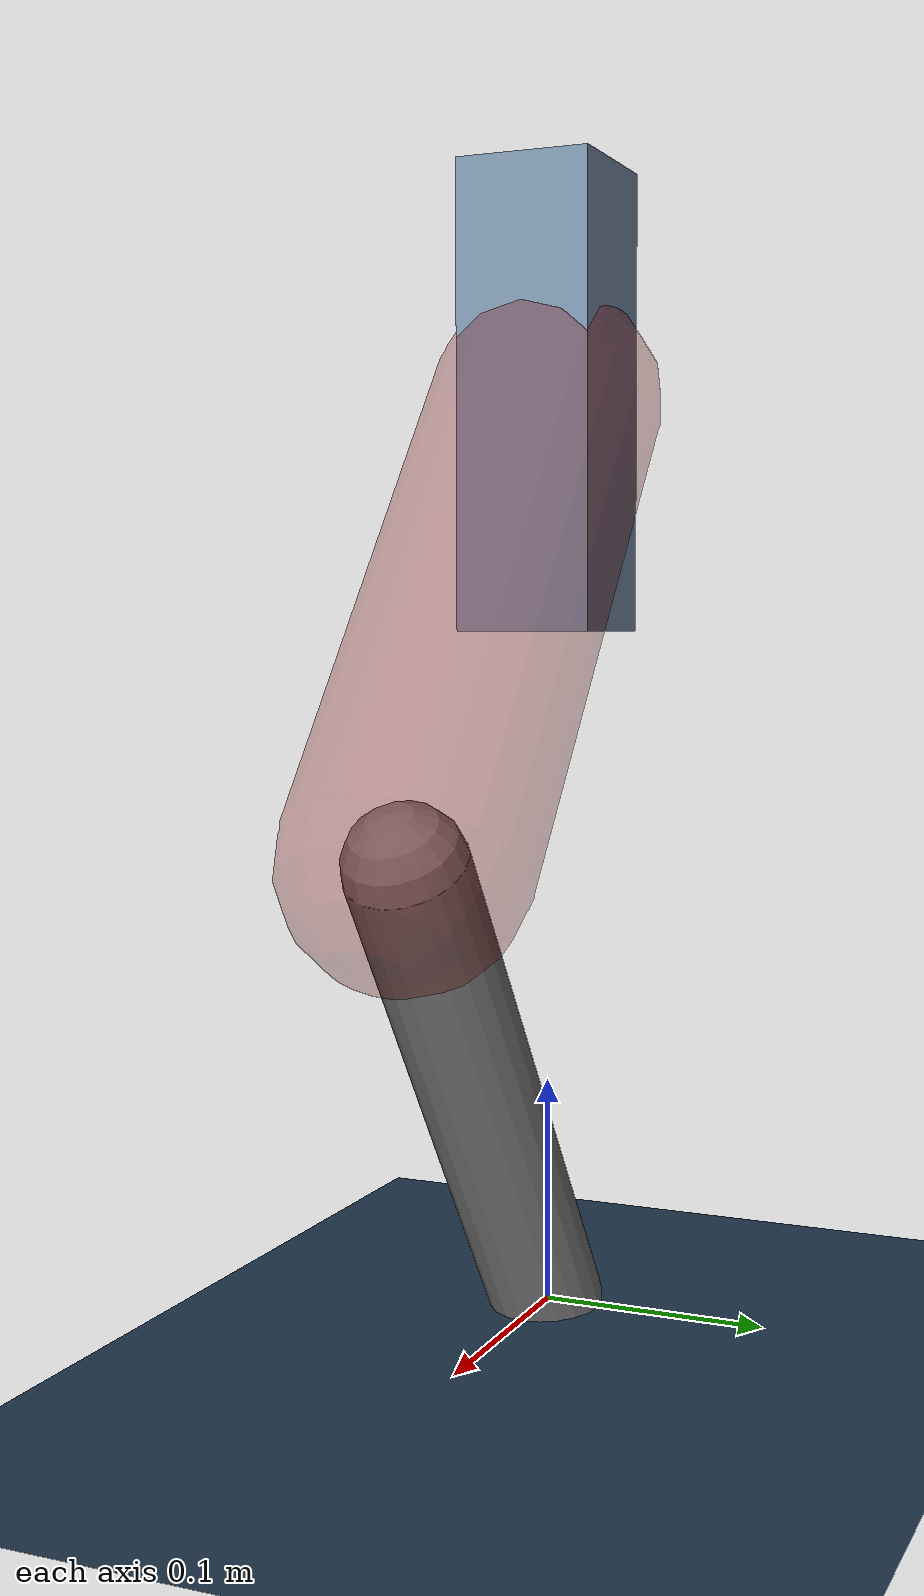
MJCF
<mujoco model="Hopper2D">
	<compiler inertiafromgeom="true" angle="radian" />
	<option timestep="0.001" integrator="implicit" cone="elliptic" solver="Newton" tolerance="1e-10" />

	<default>
		<geom contype="1" conaffinity="1" condim="3" friction="2 0.005 0.0001" solref="0.005 1" />
		<joint limited="true" damping="0.1" />
	</default>

	<asset>
		<texture name="skybox" type="skybox" builtin="gradient" rgb1=".4 .6 .8" rgb2="0 0 0" width="800" height="800" />
		<texture name="grid" type="2d" builtin="checker" rgb1=".1 .2 .3" rgb2=".2 .3 .4" width="300" height="300" mark="edge" markrgb=".2 .3 .4" />
		<material name="ground" texture="grid" texrepeat="1 1" texuniform="true" reflectance="0.1" />
		<material name="leg" rgba="0.5 0.6 0.7 1" />
	</asset>

	<worldbody>

		<geom name="floor" type="plane" size="5 5 0.25" material="ground" />

		<light directional="false" diffuse="0.8 0.8 0.8" specular="0.3 0.3 0.3" pos="0 0 2" dir="0 0 -1" />
		<light mode="targetbodycom" target="base" directional="false" diffuse="0.8 0.8 0.8" specular="0.3 0.3 0.3" pos="0 0 2" dir="0 0 -1" />

		<camera name="fixed" pos="0 -2 1" xyaxes="1 0 0 0 0 1" />
		<camera name="tracking" mode="trackcom" pos="0 -3 1" />

		<body name="root" pos="0 0 0.3996351724361622">
			<joint name="slide_x" type="slide" axis="1 0 0" range="-100 100" />
			<joint name="slide_z" type="slide" axis="0 0 1" range="0 10" />

			<body name="base" pos="0 0 0">
				<geom name="torso" type="box" size="0.03 0.03 0.1" mass="2.002" material="leg" />

				<body name="link1" pos="0 0 0" euler="0 0.9268341569612025 0">
					<joint type="hinge" axis="0 -1 0" pos="0 0 0" name="hinge1" limited="true" range="-3.14 3.14" stiffness="0" damping="0.1" />
					<geom name="thigh" type="capsule" fromto="0 0 0 0.23477527487838656 0 0" size="0.05" rgba="0.5 0 0 0.3" mass="0.817215714683805" />

					<body name="link2" pos="0.23477527487838656 0 0" euler="0 1.2309788798455576 0">
						<joint type="hinge" axis="0 -1 0" pos="0 0 0" name="hinge2" limited="true" range="-3.14 3.14" stiffness="0" damping="0.1" />
						<geom name="shank" type="capsule" fromto="0 0 0 0.25448083488379775 0 0" size="0.025" mass="0.4461846679070382" />

					</body>
				</body>
			</body>
		</body>
	</worldbody>

	<actuator>
		<motor name="torque1" joint="hinge1" ctrlrange="-64.12930493121961 64.12930493121961" ctrllimited="true" gear="1" />
		<motor name="torque2" joint="hinge2" ctrlrange="-26.112754789223768 26.112754789223768" ctrllimited="true" gear="1" />
	</actuator>
</mujoco>
